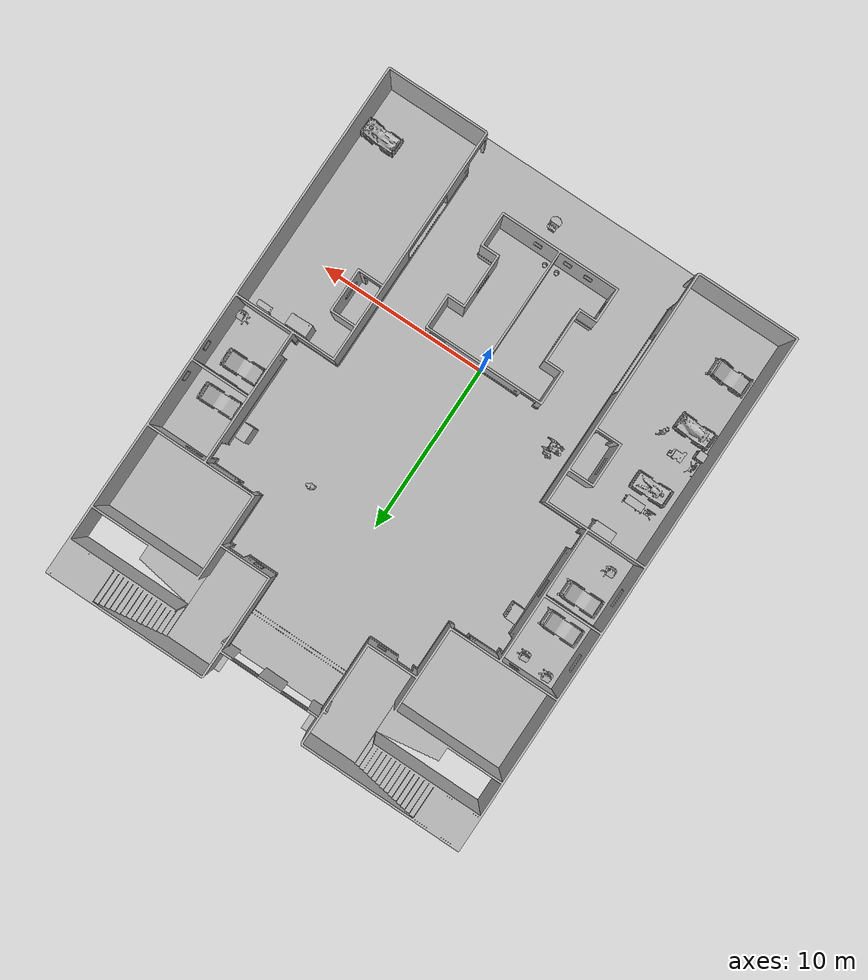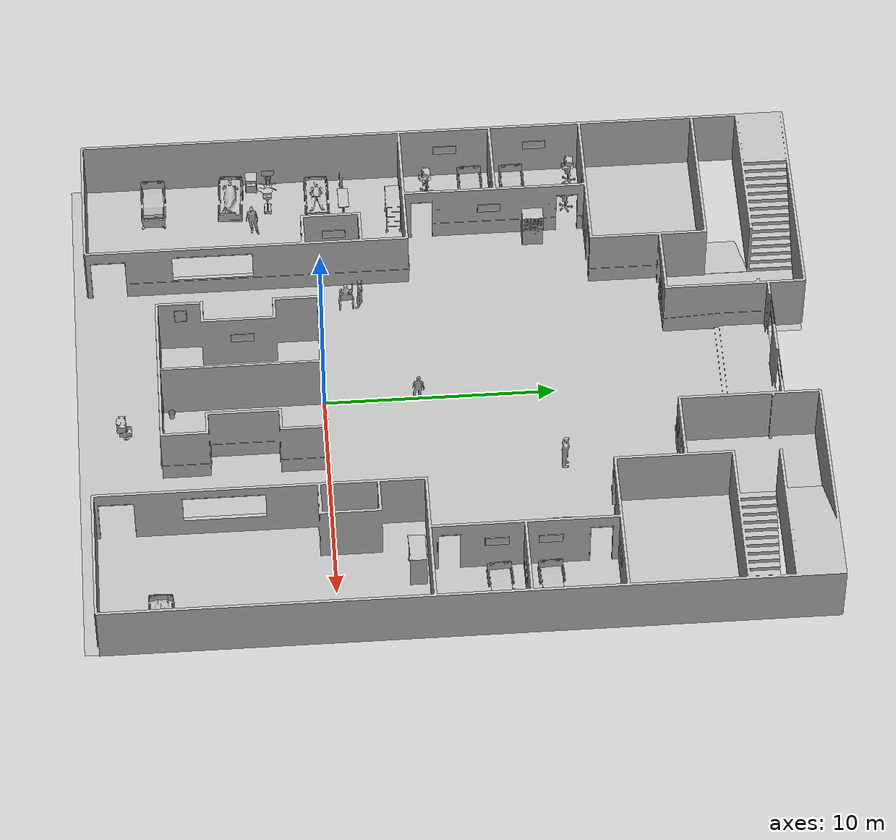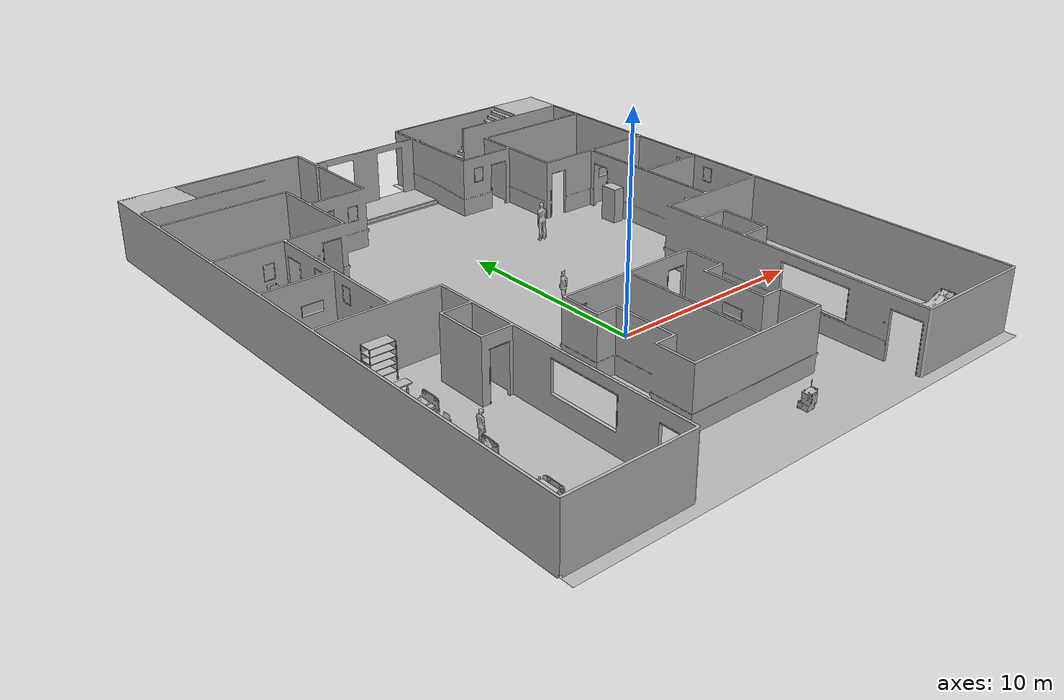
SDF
<sdf version="1.6">
 <world name="default">
  <plugin name="gz::sim::systems::Physics" filename="gz-sim-physics-system"/>
  <plugin filename="gz-sim-user-commands-system" name="gz::sim::systems::UserCommands"/>
  <plugin name="gz::sim::systems::SceneBroadcaster" filename="gz-sim-scene-broadcaster-system"/>
  <plugin filename="gz-sim-sensors-system" name="gz::sim::systems::Sensors">
   <render_engine>ogre2</render_engine>
  </plugin>
  <gravity>0 0 -9.8</gravity>
  <atmosphere type="adiabatic"/>
  <scene>
   <ambient>0.6 0.6 0.6 1</ambient>
   <background>0.4 0.4 0.4 1</background>
   <shadows>false</shadows>
   <grid>false</grid>
  </scene>
  <physics default="0" name="default_physics" type="ode">
   <ode>
    <solver>
     <type>quick</type>
     <iters>10</iters>
     <sor>1.3</sor>
     <use_dynamic_moi_rescaling>0</use_dynamic_moi_rescaling>
    </solver>
    <constraints>
     <cfm>0</cfm>
     <erp>0.2</erp>
     <contact_max_correcting_vel>100</contact_max_correcting_vel>
     <contact_surface_layer>0.001</contact_surface_layer>
    </constraints>
   </ode>
   <max_step_size>0.004</max_step_size>
   <real_time_factor>1</real_time_factor>
   <real_time_update_rate>250</real_time_update_rate>
  </physics>
  <light name="sun" type="directional">
   <pose>0 0 10 0 0 0</pose>
   <diffuse>0.8 0.8 0.8 1</diffuse>
   <specular>0.2 0.2 0.2 1</specular>
   <direction>-0.5 0.1 -0.9</direction>
  </light>
  <include>
   <name>floor</name>
   <uri>model://aws_robomaker_hospital_floor_03_floor</uri>
   <static>true</static>
   <pose>-0.001425 -0.014447 0 -1.57 -0 0</pose>
  </include>
  <include>
   <name>walls</name>
   <uri>model://aws_robomaker_hospital_floor_03_walls</uri>
   <static>true</static>
   <pose>-0.013823 -0.013783 0 -1.57 -0 0</pose>
  </include>
  <include>
   <name>Scrubs2</name>
   <uri>model://Scrubs</uri>
   <static>true</static>
   <pose>0.054597 4.05849 0 0 -0 3.12413</pose>
  </include>
  <include>
   <name>PatientWheelChair1</name>
   <uri>model://PatientWheelChair</uri>
   <static>true</static>
   <pose>-5.46091 1.23577 0 0 0 -1.54828</pose>
  </include>
  <include>
   <name>Scrubs3</name>
   <uri>model://Scrubs</uri>
   <static>true</static>
   <pose>-5.38513 1.82526 0 0 0 -1.63757</pose>
  </include>
  <include>
   <name>SurgicalTrolley1</name>
   <uri>model://SurgicalTrolley</uri>
   <static>true</static>
   <pose>11.4301 3.56328 0 0 -0 0</pose>
  </include>
  <include>
   <name>PortraitA1</name>
   <uri>model://aws_robomaker_residential_PortraitA_01</uri>
   <static>true</static>
   <pose>1.14738 -6.92303 1.41115 0 -0 0</pose>
  </include>
  <include>
   <name>PortraitD1</name>
   <uri>model://aws_robomaker_residential_PortraitD_02</uri>
   <static>true</static>
   <pose>2.40772 -3.61975 1.54508 0 0 -1.57619</pose>
  </include>
  <include>
   <name>MopCart3</name>
   <uri>model://MopCart3</uri>
   <static>true</static>
   <pose>1.07736 -8.59036 -6.7e-05 0 1e-06 0</pose>
  </include>
  <include>
   <name>PortraitA2</name>
   <uri>model://aws_robomaker_residential_PortraitA_01</uri>
   <static>true</static>
   <pose>-0.706092 -6.93108 1.41115 0 -0 0</pose>
  </include>
  <include>
   <name>PortraitA3</name>
   <uri>model://aws_robomaker_residential_PortraitA_01</uri>
   <static>true</static>
   <pose>-1.97245 -6.9216 1.41115 0 -0 0</pose>
  </include>
  <include>
   <name>PortraitD2</name>
   <uri>model://aws_robomaker_residential_PortraitD_02</uri>
   <static>true</static>
   <pose>-2.43341 -3.38621 1.54508 0 -0 1.57083</pose>
  </include>
  <include>
   <name>ElderLadyPatient1</name>
   <uri>model://ElderLadyPatient</uri>
   <static>true</static>
   <pose>-10.9972 0.231354 0.001654 0 -0 0</pose>
  </include>
  <include>
   <name>CGMClassic4</name>
   <uri>model://CGMClassic</uri>
   <static>true</static>
   <pose>-11.0878 -7.00992 0 0 -0 3.1351</pose>
  </include>
  <include>
   <name>Trash1</name>
   <uri>model://aws_robomaker_residential_Trash_01</uri>
   <static>true</static>
   <pose>0.316178 -6.58235 0.000903 0 -2e-06 0</pose>
  </include>
  <include>
   <name>Trash2</name>
   <uri>model://aws_robomaker_residential_Trash_01</uri>
   <static>true</static>
   <pose>-0.436645 -6.57758 0.000903 -1e-06 -1e-06 0</pose>
  </include>
  <include>
   <name>InstrumentCart21</name>
   <uri>model://InstrumentCart2</uri>
   <static>true</static>
   <pose>-12.0906 -1.87329 0.051875 0 -0 1.57773</pose>
  </include>
  <include>
   <name>InstrumentCart22</name>
   <uri>model://InstrumentCart2</uri>
   <static>true</static>
   <pose>-11.5231 1.34237 0 0 -0 0</pose>
  </include>
  <include>
   <name>CGMClassic5</name>
   <uri>model://CGMClassic</uri>
   <static>true</static>
   <pose>-11.0106 8.9505 -0.008203 -0.035019 -0.000392 3.13388</pose>
  </include>
  <include>
   <name>CGMClassic6</name>
   <uri>model://CGMClassic</uri>
   <static>true</static>
   <pose>-11.025 7.10335 0 -0.035021 1.8e-05 -3.13762</pose>
  </include>
  <include>
   <name>BedTable1</name>
   <uri>model://BedTable</uri>
   <static>true</static>
   <pose>-10.4759 1.39442 0.001184 0 -3e-06 0</pose>
  </include>
  <include>
   <name>BedsideTable</name>
   <uri>model://BedsideTable</uri>
   <static>true</static>
   <pose>-12.1499 -2.63111 0.00018 1e-06 -0 -0.00878</pose>
  </include>
  <include>
   <name>PortraitD8</name>
   <uri>model://aws_robomaker_residential_PortraitD_02</uri>
   <static>true</static>
   <pose>7.88791 0.445446 1.54508 0 0 -1.57619</pose>
  </include>
  <include>
   <name>PortraitD9</name>
   <uri>model://aws_robomaker_residential_PortraitD_02</uri>
   <static>true</static>
   <pose>-7.92095 0.84255 1.54508 0 -0 1.57083</pose>
  </include>
  <include>
   <name>PortraitD11</name>
   <uri>model://aws_robomaker_residential_PortraitD_02</uri>
   <static>true</static>
   <pose>-12.3841 6.01232 1.54508 0 -0 1.57083</pose>
  </include>
  <include>
   <name>PortraitD12</name>
   <uri>model://aws_robomaker_residential_PortraitD_02</uri>
   <static>true</static>
   <pose>-12.4276 9.98828 1.54508 0 -0 1.57083</pose>
  </include>
  <include>
   <name>PortraitE3</name>
   <uri>model://aws_robomaker_residential_PortraitE_02</uri>
   <static>true</static>
   <pose>-9.08927 9.19494 1.84129 0 0 -1.5625</pose>
  </include>
  <include>
   <name>PortraitE4</name>
   <uri>model://aws_robomaker_residential_PortraitD_02</uri>
   <static>true</static>
   <pose>-8.94468 7.73571 1.54508 0 -0 1.57083</pose>
  </include>
  <include>
   <name>PortraitE5</name>
   <uri>model://aws_robomaker_residential_PortraitE_02</uri>
   <static>true</static>
   <pose>-9.08305 7.04089 1.84129 0 0 -1.5625</pose>
  </include>
  <include>
   <name>PortraitE6</name>
   <uri>model://aws_robomaker_residential_PortraitE_01</uri>
   <static>true</static>
   <pose>-9.9148 11.9172 1.40573 0 -0 0</pose>
  </include>
  <include>
   <name>PortraitD14</name>
   <uri>model://aws_robomaker_residential_PortraitD_01</uri>
   <static>true</static>
   <pose>-10.2134 7.89752 1.40573 0 -0 0</pose>
  </include>
  <include>
   <name>CGMClassic7</name>
   <uri>model://CGMClassic</uri>
   <static>true</static>
   <pose>10.6166 9.06291 -0.008203 -0.03501 0.000885 -3.11285</pose>
  </include>
  <include>
   <name>CGMClassic8</name>
   <uri>model://CGMClassic</uri>
   <static>true</static>
   <pose>10.6006 6.90956 -0.008203 -0.035003 0.001133 -3.10576</pose>
  </include>
  <include>
   <name>PortraitD15</name>
   <uri>model://aws_robomaker_residential_PortraitD_02</uri>
   <static>true</static>
   <pose>9.06517 6.78742 1.54508 0 -0 1.57083</pose>
  </include>
  <include>
   <name>PortraitD16</name>
   <uri>model://aws_robomaker_residential_PortraitD_02</uri>
   <static>true</static>
   <pose>9.06517 9.05858 1.54508 0 -0 1.57083</pose>
  </include>
  <include>
   <name>PortraitE7</name>
   <uri>model://aws_robomaker_residential_PortraitE_02</uri>
   <static>true</static>
   <pose>12.3972 6.98849 1.84129 0 0 -1.5625</pose>
  </include>
  <include>
   <name>PortraitE8</name>
   <uri>model://aws_robomaker_residential_PortraitE_02</uri>
   <static>true</static>
   <pose>12.3972 8.87466 1.84129 0 0 -1.5625</pose>
  </include>
  <include>
   <name>PortraitE9</name>
   <uri>model://aws_robomaker_residential_PortraitE_02</uri>
   <static>true</static>
   <pose>-3.4385 -6.00525 1.84129 0 -0 1.56777</pose>
  </include>
  <include>
   <name>PortraitD17</name>
   <uri>model://aws_robomaker_residential_PortraitD_01</uri>
   <static>true</static>
   <pose>10.596 7.88308 1.40573 0 -0 0</pose>
  </include>
  <include>
   <name>PortraitD18</name>
   <uri>model://aws_robomaker_residential_PortraitD_01</uri>
   <static>true</static>
   <pose>9.98896 11.914 1.40573 0 -0 0</pose>
  </include>
  <include>
   <name>MalePatientBed</name>
   <uri>model://MalePatientBed</uri>
   <static>true</static>
   <pose>11.3771 -7.38891 0.001658 -1e-06 1e-06 3.11598</pose>
  </include>
  <include>
   <name>StorageRackCoverOpen</name>
   <uri>model://StorageRackCoverOpen</uri>
   <static>true</static>
   <pose>9.15016 3.44263 -9e-06 1e-06 2e-06 0</pose>
  </include>
  <include>
   <name>StorageRack4</name>
   <uri>model://StorageRack</uri>
   <static>true</static>
   <pose>-9.91557 3.5644 -9e-06 1e-06 1e-06 -0.000273</pose>
  </include>
  <include>
   <name>ElderMalePatient1</name>
   <uri>model://ElderMalePatient</uri>
   <static>true</static>
   <pose>-11.2471 -3.5813 0.001656 0 -0 -0.054192</pose>
  </include>
  <include>
   <name>PortraitE10</name>
   <uri>model://aws_robomaker_residential_PortraitE_02</uri>
   <static>true</static>
   <pose>-3.74211 14.8725 1.54379 0 -0 0</pose>
  </include>
  <include>
   <name>PortraitE11</name>
   <uri>model://aws_robomaker_residential_PortraitE_01</uri>
   <static>true</static>
   <pose>3.85701 14.8779 1.69742 0 -0 0</pose>
  </include>
  <include>
   <name>BMWCart</name>
   <uri>model://BMWCart</uri>
   <static>true</static>
   <pose>-10.931 -1.9483 0 0 -0 0</pose>
  </include>
  <include>
   <name>Scrubs7</name>
   <uri>model://Scrubs</uri>
   <static>true</static>
   <pose>-9.75875 -2.67552 0 0 -0 0</pose>
  </include>
  <include>
   <name>BPCart1</name>
   <uri>model://BPCart</uri>
   <static>true</static>
   <pose>-10.1788 11.173 0.003446 1e-06 -0 0.003096</pose>
  </include>
  <include>
   <name>BPCart2</name>
   <uri>model://BPCart</uri>
   <static>true</static>
   <pose>12.0072 4.64765 0 0 -0 0</pose>
  </include>
  <include>
   <name>BPCart3</name>
   <uri>model://BPCart</uri>
   <static>true</static>
   <pose>-11.7236 11.4294 0 0 -0 0</pose>
  </include>
  <include>
   <name>BPCart4</name>
   <uri>model://BPCart</uri>
   <static>true</static>
   <pose>-11.4703 5.05999 0.003446 1e-06 -0 0.003096</pose>
  </include>
  <include>
   <name>VendingMachine1</name>
   <uri>model://VendingMachine</uri>
   <static>true</static>
   <pose>-8.45694 9.63064 0 0 -0 0</pose>
  </include>
  <include>
   <name>VendingMachine2</name>
   <uri>model://VendingMachine</uri>
   <static>true</static>
   <pose>8.35378 9.64852 -3e-06 -6e-06 0 0</pose>
  </include>
  <include>
   <name>person2control</name>
   <uri>model://PersonToControl_harmonic</uri>
   <pose>4 10 0 0 0 3.14</pose>
  </include>
 </world>
</sdf>

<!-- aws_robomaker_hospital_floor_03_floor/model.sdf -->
<sdf version="1.6">
  <model name="aws_robomaker_hospital_floor_03_floor">
    <link name="link">
      <visual name="visual">
	      <geometry>
          <mesh>
            <uri>model://aws_robomaker_hospital_floor_03_floor/meshes/aws_robomaker_hospital_floor_03_floor_visual.dae</uri>
          </mesh>
        </geometry>
      </visual>
      <collision name="collision">
        <pose>0 0 0 1.57 0 0</pose>
        <geometry>
          <box>
            <size>25 40 0.01</size>
          </box>
        </geometry>
        <surface>
          <friction>
            <ode>
              <mu>100</mu>
              <mu2>50</mu2>
            </ode>
          </friction>
        </surface>
      </collision>
</link>
  <static>1</static>
  </model>
</sdf>

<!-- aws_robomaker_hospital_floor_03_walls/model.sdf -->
<sdf version="1.6">
  <model name="aws_robomaker_hospital_floor_03_walls">
    <link name="link">
      <visual name="visual">
	    <geometry>
          <mesh>
            <uri>model://aws_robomaker_hospital_floor_03_walls/meshes/aws_robomaker_hospital_floor_03_walls_visual.dae</uri>
          </mesh>
        </geometry>
      </visual>
      <collision name="collision">
        <geometry>
          <mesh>
            <uri>model://aws_robomaker_hospital_floor_03_walls/meshes/aws_robomaker_hospital_floor_03_walls_visual.dae</uri>
          </mesh>
        </geometry>
      </collision>
</link>
  <static>1</static>
  </model>
</sdf>

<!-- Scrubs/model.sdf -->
<sdf version="1.6">
  <model name='Scrubs'>
   <static>true</static>
    <link name="body">
      <pose>0 0 0 0 0 0</pose>

      <visual name="visual">
        <geometry>
          <mesh>
            <uri>model://Scrubs/meshes/scrubs.obj</uri>
          </mesh>
        </geometry>
      </visual>

      <collision name="collision">
        <geometry>
          <mesh>
            <uri>model://Scrubs/meshes/Scrubs_Col.obj</uri>
          </mesh>
        </geometry>
      </collision>

    </link>
  </model>
</sdf>

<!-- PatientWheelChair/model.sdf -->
<sdf version="1.6">
  <model name="PatientWheelChair">
   <static>true</static>
    <link name="body">
      <pose>0 0 0 0 0 0</pose>

      <visual name="visual">
        <geometry>
          <mesh>
            <uri>model://PatientWheelChair/meshes/PatientWheelChair.obj</uri>
          </mesh>
        </geometry>
      </visual>

      <collision name="collision">
        <geometry>
          <mesh>
            <uri>model://PatientWheelChair/meshes/PatientWheelChair_Col.obj</uri>
          </mesh>
        </geometry>
      </collision>

    </link>
  </model>
</sdf>

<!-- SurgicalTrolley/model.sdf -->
<sdf version="1.6">
  <model name='SurgicalTrolley'>
   <static>true</static>
    <link name="body">
      <pose>0 0 0 0 0 0</pose>

      <visual name="visual">
        <geometry>
          <mesh>
            <uri>model://SurgicalTrolley/meshes/trolley.obj</uri>
          </mesh>
        </geometry>
      </visual>

      <collision name="collision">
        <geometry>
          <mesh>
            <uri>model://SurgicalTrolley/meshes/trolley.obj</uri>
          </mesh>
        </geometry>
      </collision>

    </link>
  </model>
</sdf>

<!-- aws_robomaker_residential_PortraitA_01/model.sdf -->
<sdf version="1.6">
  <model name="aws_robomaker_residential_PortraitA_01">
    <link name="link">
      <inertial>
        <mass>1</mass>
      </inertial>
      <collision name="collision">
        <geometry>
          <mesh>
            <uri>model://aws_robomaker_residential_PortraitA_01/meshes/aws_PortraitA_01_collision.DAE</uri>
            <scale>1 1 1</scale>
          </mesh>
        </geometry>
      </collision>
      <visual name="visual">
	    <geometry>
          <mesh>
            <uri>model://aws_robomaker_residential_PortraitA_01/meshes/aws_PortraitA_01_visual.DAE</uri>
          </mesh>
        </geometry>
      <meta> <layer> 2 </layer></meta>
</visual>
    </link>
	<static>1</static>
  </model>
</sdf>

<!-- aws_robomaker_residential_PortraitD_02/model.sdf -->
<sdf version="1.6">
  <model name="aws_robomaker_residential_PortraitD_02">
    <link name="link">

      <inertial>
        <mass>1.5</mass>
      </inertial>

      <collision name="collision">
        <geometry>
          <mesh>
            <uri>model://aws_robomaker_residential_PortraitD_02/meshes/aws_PortraitD_01_collision.DAE</uri>
            <scale>1 1 1</scale>
          </mesh>
        </geometry>

      </collision>

      <visual name="visual">
	    <geometry>
          <mesh>
            <uri>model://aws_robomaker_residential_PortraitD_02/meshes/aws_PortraitD_01_visual.DAE</uri>
          </mesh>
        </geometry>
      <meta> <layer> 2 </layer></meta>
</visual>
    </link>
	<static>1</static>
  </model>
</sdf>

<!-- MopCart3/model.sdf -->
<sdf version="1.5">
  <model name="MopCart3">
    <link name="link">
      <pose>0 0 0 0 0 0</pose>

        <visual name="visual">
          <geometry>
            <mesh><uri>model://MopCart3/meshes/MopCart3.obj</uri></mesh>
          </geometry>
        </visual>

        <collision name="collision">
          <geometry>
            <mesh><uri>model://MopCart3/meshes/MopCart3.obj</uri></mesh>
          </geometry>
        </collision>

    </link>
  </model>
</sdf>

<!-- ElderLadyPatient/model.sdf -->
<sdf version="1.6">
  <model name='ElderLadyPatient'>
    <link name="body">
      <pose>0 0 0 0 0 0</pose>

      <visual name="visual">
        <geometry>
          <mesh>
            <uri>model://ElderLadyPatient/meshes/ElderFemale.obj</uri>
          </mesh>
        </geometry>
      </visual>

      <collision name="collision">
        <geometry>
          <mesh>
            <uri>model://ElderLadyPatient/meshes/ElderFemale.obj</uri>
          </mesh>
        </geometry>
      </collision>

    </link>
  </model>
</sdf>

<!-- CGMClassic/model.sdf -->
<sdf version="1.6">
  <model name="CGMClassic">
   <static>true</static>
    <link name="body">
      <pose>0 0 0 0 0 0</pose>

      <visual name="visual">
        <geometry>
          <mesh>
            <uri>model://CGMClassic/meshes/CGMClassic.obj</uri>
            <scale>0.01 0.01 0.01</scale>
          </mesh>
        </geometry>
      </visual>

      <collision name="collision">
        <geometry>
          <mesh>
            <uri>model://CGMClassic/meshes/CGMClassic.obj</uri>
            <scale>0.01 0.01 0.01</scale>
          </mesh>
        </geometry>
      </collision>

    </link>
  </model>
</sdf>

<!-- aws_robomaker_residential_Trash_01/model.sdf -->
<sdf version="1.6">
  <model name="aws_robomaker_residential_Trash_01">
    <link name="link">

      <inertial>

        <mass>0.1</mass>
        <inertia>
            <ixy>0</ixy>
            <ixz>0</ixz>
            <iyz>0</iyz>
            <ixx>0.05288</ixx>
            <iyy>0.05288</iyy>
            <izz>0.09132</izz>
          </inertia>
      </inertial>

      <collision name="collision">
        <geometry>
          <mesh>
            <uri>model://aws_robomaker_residential_Trash_01/meshes/aws_Trash_01_collision.DAE</uri>
            <scale>1 1 1</scale>
          </mesh>
        </geometry>

      </collision>

      <visual name="visual">
	    <geometry>
          <mesh>
            <uri>model://aws_robomaker_residential_Trash_01/meshes/aws_Trash_01_visual.DAE</uri>
          </mesh>
        </geometry>
      <meta> <layer> 1 </layer></meta>
</visual>
    </link>
  </model>
</sdf>

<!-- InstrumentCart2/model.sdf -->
<sdf version="1.6">
  <model name="InstrumentCart2">
   <static>true</static>
    <link name="body">
      <pose>0 0 0 0 0 0</pose>

      <visual name="visual">
        <geometry>
          <mesh>
            <uri>model://InstrumentCart2/meshes/InstrumentCart2.obj</uri>
          </mesh>
        </geometry>
      </visual>

      <collision name="collision">
        <geometry>
          <mesh>
            <uri>model://InstrumentCart2/meshes/InstrumentCart2.obj</uri>
          </mesh>
        </geometry>
      </collision>

    </link>
  </model>
</sdf>

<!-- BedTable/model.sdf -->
<sdf version="1.6">
  <model name='BedTable'>
    <link name="body">
      <pose>0 0 0 0 0 0</pose>

      <visual name="visual">
        <geometry>
          <mesh>
            <uri>model://BedTable/meshes/BedTable.obj</uri>
          </mesh>
        </geometry>
      </visual>

      <collision name="collision">
        <geometry>
          <mesh>
            <uri>model://BedTable/meshes/BedTable_Col.obj</uri>
          </mesh>
        </geometry>
      </collision>

    </link>
  </model>
</sdf>

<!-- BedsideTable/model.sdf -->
<sdf version="1.6">
  <model name='BedsideTable'>
    <link name="body">
      <pose>0 0 0 0 0 -1.5708</pose>

      <visual name="visual">
        <geometry>
          <mesh>
            <uri>model://BedsideTable/meshes/BedsideTable.obj</uri>
          </mesh>
        </geometry>
      </visual>

      <collision name="collision">
        <geometry>
          <mesh>
            <uri>model://BedsideTable/meshes/BedsideTable_Col.obj</uri>
          </mesh>
        </geometry>
      </collision>

    </link>
  </model>
</sdf>

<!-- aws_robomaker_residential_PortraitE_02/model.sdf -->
<sdf version="1.6">
  <model name="aws_robomaker_residential_PortraitE_02">
    <link name="link">
      <inertial>
        <mass>1</mass>
      </inertial>
      <collision name="collision">
        <geometry>
          <mesh>
            <uri>model://aws_robomaker_residential_PortraitE_02/meshes/aws_PortraitE_01_collision.DAE</uri>
            <scale>1 1 1</scale>
          </mesh>
        </geometry>
      </collision>
      <visual name="visual">
	    <geometry>
          <mesh>
            <uri>model://aws_robomaker_residential_PortraitE_02/meshes/aws_PortraitE_01_visual.DAE</uri>
          </mesh>
        </geometry>
      <meta> <layer> 2 </layer></meta>
</visual>
    </link>
	<static>1</static>
  </model>
</sdf>

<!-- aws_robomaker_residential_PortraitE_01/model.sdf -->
<sdf version="1.6">
  <model name="aws_robomaker_residential_PortraitE_01">
    <link name="link">
      <inertial>
        <mass>1</mass>
      </inertial>
      <collision name="collision">
        <geometry>
          <mesh>
            <uri>model://aws_robomaker_residential_PortraitE_01/meshes/aws_PortraitE_01_collision.DAE</uri>
            <scale>1 1 1</scale>
          </mesh>
        </geometry>
      </collision>
      <visual name="visual">
	    <geometry>
          <mesh>
            <uri>model://aws_robomaker_residential_PortraitE_01/meshes/aws_PortraitE_01_visual.DAE</uri>
          </mesh>
        </geometry>
      <meta> <layer> 2 </layer></meta>
</visual>
    </link>
	<static>1</static>
  </model>
</sdf>

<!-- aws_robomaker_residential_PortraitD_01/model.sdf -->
<sdf version="1.6">
  <model name="aws_robomaker_residential_PortraitD_01">
    <link name="link">

      <inertial>
        <mass>1.5</mass>
      </inertial>

      <collision name="collision">
        <geometry>
          <mesh>
            <uri>model://aws_robomaker_residential_PortraitD_01/meshes/aws_PortraitD_01_collision.DAE</uri>
            <scale>1 1 1</scale>
          </mesh>
        </geometry>

      </collision>

      <visual name="visual">
	    <geometry>
          <mesh>
            <uri>model://aws_robomaker_residential_PortraitD_01/meshes/aws_PortraitD_01_visual.DAE</uri>
          </mesh>
        </geometry>
      <meta> <layer> 2 </layer></meta>
</visual>
    </link>
	<static>1</static>
  </model>
</sdf>

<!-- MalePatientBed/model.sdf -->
<sdf version="1.5">
  <model name="MalePatientBed">
    <link name="link">
      <pose>0 0 0 0 0 0</pose>

        <visual name="visual">
          <geometry>
            <mesh><uri>model://MalePatientBed/meshes/MalePatientBed.obj</uri></mesh>
          </geometry>
        </visual>

        <collision name="collision">
          <geometry>
            <mesh><uri>model://MalePatientBed/meshes/MalePatientBed.obj</uri></mesh>
          </geometry>
        </collision>

    </link>
  </model>
</sdf>

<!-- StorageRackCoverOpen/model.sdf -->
<sdf version="1.5">
  <model name="StorageRackCoverOpen">
    <link name="link">
      <pose>0 0 0 0 0 0</pose>

        <visual name="visual">
          <geometry>
            <mesh><uri>model://StorageRackCoverOpen/meshes/StorageRackCoverOpen.obj</uri></mesh>
          </geometry>
        </visual>

        <collision name="collision">
          <geometry>
            <mesh><uri>model://StorageRackCoverOpen/meshes/StorageRackCoverOpen.obj</uri></mesh>
          </geometry>
        </collision>

    </link>
  </model>
</sdf>

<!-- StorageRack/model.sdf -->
<sdf version="1.5">
  <model name="StorageRack">
    <link name="link">
      <pose>0 0 0 0 0 0</pose>

        <visual name="visual">
          <geometry>
            <mesh><uri>model://StorageRack/meshes/StorageRack.obj</uri></mesh>
          </geometry>
        </visual>

        <collision name="collision">
          <geometry>
            <mesh><uri>model://StorageRack/meshes/StorageRack.obj</uri></mesh>
          </geometry>
        </collision>

    </link>
  </model>
</sdf>

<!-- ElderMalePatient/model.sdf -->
<sdf version="1.5">
  <model name="ElderMalePatient">
    <link name="link">
      <pose>0 0 0 0 0 0</pose>

        <visual name="visual">
          <geometry>
            <mesh><uri>model://ElderMalePatient/meshes/ElderMalePatient.obj</uri></mesh>
          </geometry>
        </visual>

        <collision name="collision">
          <geometry>
            <mesh><uri>model://ElderMalePatient/meshes/ElderMalePatient.obj</uri></mesh>
          </geometry>
        </collision>

    </link>
  </model>
</sdf>

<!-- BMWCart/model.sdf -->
<sdf version="1.6">
  <model name='BMWCart'>
    <link name="body">
      <pose>0 0 0 0 0 0</pose>

      <visual name="visual">
        <geometry>
          <mesh>
            <uri>model://BMWCart/meshes/Cart_BMW.obj</uri>
          </mesh>
        </geometry>
      </visual>

      <collision name="collision">
        <geometry>
          <mesh>
            <uri>model://BMWCart/meshes/Cart_BMW_Col.obj</uri>
          </mesh>
        </geometry>
      </collision>

    </link>
  </model>
</sdf>

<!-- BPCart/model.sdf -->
<sdf version="1.6">
  <model name='BPCart'>
    <link name="body">
      <pose>0 0 0 0 0 0</pose>

      <visual name="visual">
        <geometry>
          <mesh>
            <uri>model://BPCart/meshes/Cart_BP.obj</uri>
          </mesh>
        </geometry>
      </visual>

      <collision name="collision">
        <geometry>
          <mesh>
            <uri>model://BPCart/meshes/Cart_BP_Col.obj</uri>
          </mesh>
        </geometry>
      </collision>

    </link>
  </model>
</sdf>

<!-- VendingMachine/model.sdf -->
<sdf version="1.6">
  <model name='VendingMachine'>
    <link name="body">
      <pose>0 0 0 0 0 0</pose>

      <visual name="visual">
        <geometry>
          <mesh>
            <uri>model://VendingMachine/meshes/VendingMachine.obj</uri>
          </mesh>
        </geometry>
      </visual>

      <collision name="collision">
        <geometry>
          <mesh>
            <uri>model://VendingMachine/meshes/VendingMachine.obj</uri>
          </mesh>
        </geometry>
      </collision>

    </link>
  </model>
</sdf>

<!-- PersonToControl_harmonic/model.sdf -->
<sdf version="1.6">
  <model name="PersonToControl_harmonic">
    <link name="link">
      <inertial>
        <pose>0 -0.1 0.95 0 0 0</pose>
        <mass>80.0</mass>
        <inertia>
          <ixx>24.88</ixx>
          <ixy>0</ixy>
          <ixz>0</ixz>
          <iyy>25.73</iyy>
          <iyz>0</iyz>
          <izz>2.48</izz>
        </inertia>
      </inertial>

      <collision name="person_bottom">
        <pose>0 -0.1 0.01 0 0 0</pose>
        <geometry>
          <box>
            <size>0.5 0.35 0.02</size>
          </box>
        </geometry>
      </collision>

      <collision name="person_collision">
        <pose>0 0 0.02 0.04 0 0</pose>
        <geometry>
          <mesh>
            <uri>model://PersonToControl_harmonic/meshes/standing.dae</uri>
          </mesh>
        </geometry>
      </collision>

      <visual name="person_visual">
        <pose>0 0 0.02 0.04 0 0</pose>
        <geometry>
          <mesh>
            <uri>model://PersonToControl_harmonic/meshes/standing.dae</uri>
          </mesh>
        </geometry>
      </visual>
    </link>

  <plugin name="person_plugin::Person" filename="libpersonplugin_harmonic.so">
  </plugin>

  <static>false</static>

  </model>
</sdf>
